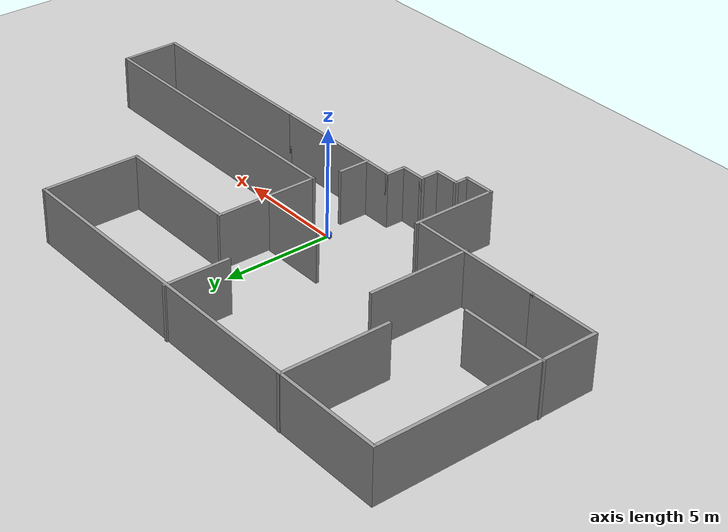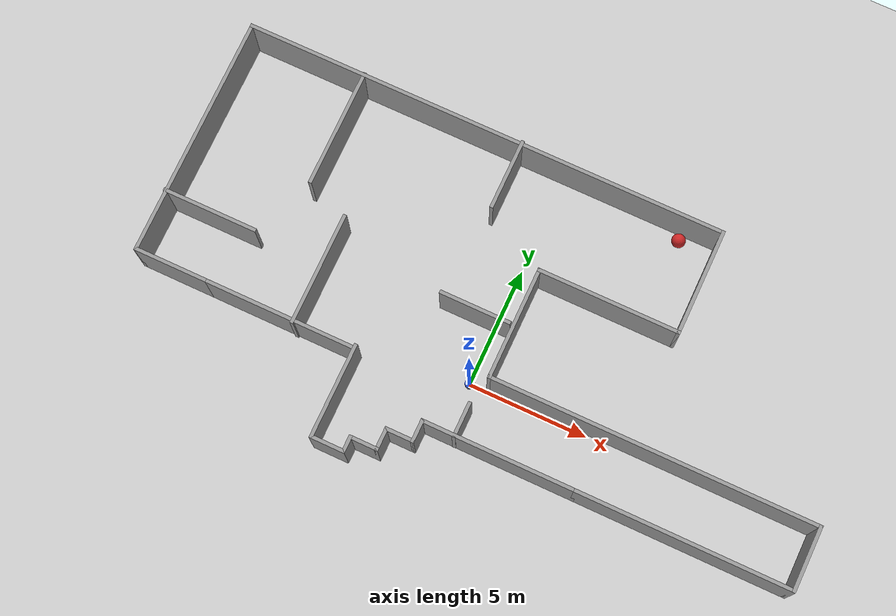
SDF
<sdf version="1.6">
 <world name="default">
  <light name="sun" type="directional">
   <pose>0 0 10 0 -0 0</pose>
   <diffuse>0.8 0.8 0.8 1</diffuse>
   <specular>0.2 0.2 0.2 1</specular>
   <attenuation>
    <range>1000</range>
    <constant>0.9</constant>
    <linear>0.01</linear>
    <quadratic>0.001</quadratic>
   </attenuation>
   <direction>-0.5 0.1 -0.9</direction>
  </light>
  <model name="ground_plane">
   <static>1</static>
   <link name="link">
    <collision name="collision">
     <geometry><plane><normal>0 0 1</normal><size>100 100</size></plane></geometry>
     <surface><friction><ode><mu>100</mu><mu2>50</mu2></ode></friction></surface>
    </collision>
    <visual name="visual">
     <cast_shadows>0</cast_shadows>
     <geometry><plane><normal>0 0 1</normal><size>100 100</size></plane></geometry>
     <material>
      <script><uri>file://media/materials/scripts/gazebo.material</uri><name>Gazebo/Grey</name></script>
     </material>
    </visual>
   </link>
  </model>
  <gravity>0 0 -9.8</gravity>
  <magnetic_field>6e-06 2.3e-05 -4.2e-05</magnetic_field>
  <atmosphere type="adiabatic"/>
  <physics name="default_physics" default="0" type="ode">
   <max_step_size>0.001</max_step_size>
   <real_time_factor>1</real_time_factor>
   <real_time_update_rate>1000</real_time_update_rate>
  </physics>
  <scene><ambient>0.4 0.4 0.4 1</ambient><background>0.7 0.7 0.7 1</background><shadows>1</shadows></scene>
  <audio><device>default</device></audio>
  <spherical_coordinates>
   <surface_model>EARTH_WGS84</surface_model>
   <latitude_deg>0</latitude_deg>
   <longitude_deg>0</longitude_deg>
   <elevation>0</elevation>
   <heading_deg>0</heading_deg>
  </spherical_coordinates>
  <model name="RoboCup SPL Ball">
   <static>0</static>
   <link name="ball">
    <inertial>
     <mass>0.0056</mass>
     <inertia>
      <ixx>2.37e-06</ixx>
      <iyy>2.37e-06</iyy>
      <izz>2.37e-06</izz>
      <ixy>0</ixy>
      <ixz>0</ixz>
      <iyz>0</iyz>
     </inertia>
    </inertial>
    <collision name="collision"><geometry><sphere><radius>0.289568</radius></sphere></geometry></collision>
    <visual name="visual">
     <geometry><sphere><radius>0.289568</radius></sphere></geometry>
     <material>
      <script><uri>file://media/materials/scripts/gazebo.material</uri><name>Gazebo/RedBright</name></script>
     </material>
    </visual>
   </link>
   <pose>5.15164 8.73556 0.289568 0.378232 -1e-06 0</pose>
  </model>
  <model name="mbot">
   <link name="base_footprint">
    <inertial>
     <pose>0.013077 0 0.138462 0 -0 0</pose>
     <mass>1.3</mass>
     <inertia>
      <ixx>0.0360561</ixx>
      <ixy>0</ixy>
      <ixz>-0.00121615</ixz>
      <iyy>0.0387238</iyy>
      <iyz>0</iyz>
      <izz>0.0426727</izz>
     </inertia>
    </inertial>
    <collision name="base_footprint_fixed_joint_lump__base_link_collision">
     <pose>0 0 0.11 0 -0 0</pose>
     <geometry><cylinder><length>0.16</length><radius>0.2</radius></cylinder></geometry>
    </collision>
    <collision name="base_footprint_fixed_joint_lump__camera_link_collision_1">
     <pose>0.17 0 0.21 0 -0 0</pose>
     <geometry><box><size>0.01 0.04 0.04</size></box></geometry>
    </collision>
    <collision name="base_footprint_fixed_joint_lump__pillar_link_collision_2">
     <pose>0 0 0.21 0 -0 0</pose>
     <geometry><cylinder><length>0.1</length><radius>0.01</radius></cylinder></geometry>
    </collision>
    <collision name="base_footprint_fixed_joint_lump__laser_link_collision_3">
     <pose>0 0 0.28 0 -0 0</pose>
     <geometry><cylinder><length>0.06</length><radius>0.05</radius></cylinder></geometry>
    </collision>
    <visual name="base_footprint_visual">
     <geometry><box><size>0.001 0.001 0.001</size></box></geometry>
     <material><script><uri>__default__</uri><name>__default__</name></script></material>
    </visual>
    <visual name="base_footprint_fixed_joint_lump__base_link_visual_1">
     <pose>0 0 0.11 0 -0 0</pose>
     <geometry><cylinder><length>0.16</length><radius>0.2</radius></cylinder></geometry>
     <material>
      <script><name>Gazebo/Blue</name><uri>file://media/materials/scripts/gazebo.material</uri></script>
     </material>
    </visual>
    <visual name="base_footprint_fixed_joint_lump__camera_link_visual_2">
     <pose>0.17 0 0.21 0 -0 0</pose>
     <geometry><box><size>0.01 0.04 0.04</size></box></geometry>
     <material>
      <script><name>Gazebo/Black</name><uri>file://media/materials/scripts/gazebo.material</uri></script>
     </material>
    </visual>
    <visual name="base_footprint_fixed_joint_lump__pillar_link_visual_3">
     <pose>0 0 0.21 0 -0 0</pose>
     <geometry><cylinder><length>0.1</length><radius>0.01</radius></cylinder></geometry>
    </visual>
    <visual name="base_footprint_fixed_joint_lump__laser_link_visual_4">
     <pose>0 0 0.28 0 -0 0</pose>
     <geometry><cylinder><length>0.05</length><radius>0.05</radius></cylinder></geometry>
     <material>
      <script><name>Gazebo/Black</name><uri>file://media/materials/scripts/gazebo.material</uri></script>
     </material>
    </visual>
    <sensor name="camera_node" type="camera">
     <update_rate>20</update_rate>
     <camera name="head">
      <horizontal_fov>1.39626</horizontal_fov>
      <image><width>1280</width><height>720</height><format>R8G8B8</format></image>
      <clip><near>0.02</near><far>300</far></clip>
      <noise><type>gaussian</type><mean>0</mean><stddev>0.007</stddev></noise>
     </camera>
     <plugin name="gazebo_camera" filename="libgazebo_ros_camera.so">
      <alwaysOn>1</alwaysOn>
      <updateRate>0.0</updateRate>
      <cameraName>/camera</cameraName>
      <imageTopicName>image_raw</imageTopicName>
      <cameraInfoTopicName>camera_info</cameraInfoTopicName>
      <frameName>camera_link</frameName>
      <hackBaseline>0.07</hackBaseline>
      <distortionK1>0.0</distortionK1>
      <distortionK2>0.0</distortionK2>
      <distortionK3>0.0</distortionK3>
      <distortionT1>0.0</distortionT1>
      <distortionT2>0.0</distortionT2>
      <robotNamespace>/</robotNamespace>
     </plugin>
     <pose>0.17 0 0.21 0 -0 0</pose>
    </sensor>
    <sensor name="rplidar" type="ray">
     <visualize>0</visualize>
     <update_rate>5.5</update_rate>
     <ray>
      <scan>
       <horizontal>
        <samples>360</samples>
        <resolution>1</resolution>
        <min_angle>-3</min_angle>
        <max_angle>3</max_angle>
       </horizontal>
       <vertical><samples>1</samples><min_angle>0</min_angle><max_angle>0</max_angle></vertical>
      </scan>
      <range><min>0.1</min><max>6</max><resolution>0.01</resolution></range>
      <noise><type>gaussian</type><mean>0</mean><stddev>0.01</stddev></noise>
     </ray>
     <plugin name="gazebo_rplidar" filename="libgazebo_ros_laser.so">
      <topicName>/scan</topicName>
      <frameName>laser_link</frameName>
      <robotNamespace>/</robotNamespace>
     </plugin>
     <pose>0 0 0.28 0 -0 0</pose>
    </sensor>
   </link>
   <link name="back_caster_link">
    <pose>0.18 0 0.015 0 -0 0</pose>
    <inertial>
     <mass>0.2</mass>
     <inertia><ixx>1.8e-05</ixx><ixy>0</ixy><ixz>0</ixz><iyy>1.8e-05</iyy><iyz>0</iyz><izz>1.8e-05</izz></inertia>
    </inertial>
    <collision name="back_caster_link_collision">
     <geometry><sphere><radius>0.015</radius></sphere></geometry>
    </collision>
    <visual name="back_caster_link_visual">
     <geometry><sphere><radius>0.015</radius></sphere></geometry>
     <material>
      <script><name>Gazebo/Black</name><uri>file://media/materials/scripts/gazebo.material</uri></script>
     </material>
    </visual>
   </link>
   <joint name="back_caster_joint" type="revolute">
    <child>back_caster_link</child>
    <parent>base_footprint</parent>
    <axis>
     <xyz>0 1 0</xyz>
     <limit><lower>-1e+16</lower><upper>1e+16</upper></limit>
     <dynamics><spring_reference>0</spring_reference><spring_stiffness>0</spring_stiffness></dynamics>
     <use_parent_model_frame>1</use_parent_model_frame>
    </axis>
   </joint>
   <link name="front_caster_link">
    <pose>-0.18 0 0.015 0 -0 0</pose>
    <inertial>
     <mass>0.2</mass>
     <inertia><ixx>1.8e-05</ixx><ixy>0</ixy><ixz>0</ixz><iyy>1.8e-05</iyy><iyz>0</iyz><izz>1.8e-05</izz></inertia>
    </inertial>
    <collision name="front_caster_link_collision">
     <geometry><sphere><radius>0.015</radius></sphere></geometry>
    </collision>
    <visual name="front_caster_link_visual">
     <geometry><sphere><radius>0.015</radius></sphere></geometry>
     <material>
      <script><name>Gazebo/Black</name><uri>file://media/materials/scripts/gazebo.material</uri></script>
     </material>
    </visual>
   </link>
   <joint name="front_caster_joint" type="revolute">
    <child>front_caster_link</child>
    <parent>base_footprint</parent>
    <axis>
     <xyz>0 1 0</xyz>
     <limit><lower>-1e+16</lower><upper>1e+16</upper></limit>
     <dynamics><spring_reference>0</spring_reference><spring_stiffness>0</spring_stiffness></dynamics>
     <use_parent_model_frame>1</use_parent_model_frame>
    </axis>
   </joint>
   <link name="left_wheel_link">
    <pose>0 0.19 0.06 0 -0 0</pose>
    <inertial>
     <mass>0.2</mass>
     <inertia>
      <ixx>0.000190417</ixx>
      <ixy>0</ixy>
      <ixz>0</ixz>
      <iyy>0.000190417</iyy>
      <iyz>0</iyz>
      <izz>0.00036</izz>
     </inertia>
    </inertial>
    <collision name="left_wheel_link_collision">
     <pose>0 0 0 1.5708 -0 0</pose>
     <geometry><cylinder><length>0.025</length><radius>0.06</radius></cylinder></geometry>
    </collision>
    <visual name="left_wheel_link_visual">
     <pose>0 0 0 1.5708 -0 0</pose>
     <geometry><cylinder><length>0.025</length><radius>0.06</radius></cylinder></geometry>
     <material>
      <script><name>Gazebo/Gray</name><uri>file://media/materials/scripts/gazebo.material</uri></script>
     </material>
    </visual>
   </link>
   <joint name="left_wheel_joint" type="revolute">
    <child>left_wheel_link</child>
    <parent>base_footprint</parent>
    <axis>
     <xyz>0 1 0</xyz>
     <limit><lower>-1e+16</lower><upper>1e+16</upper></limit>
     <dynamics><spring_reference>0</spring_reference><spring_stiffness>0</spring_stiffness></dynamics>
     <use_parent_model_frame>1</use_parent_model_frame>
    </axis>
   </joint>
   <link name="right_wheel_link">
    <pose>0 -0.19 0.06 0 -0 0</pose>
    <inertial>
     <mass>0.2</mass>
     <inertia>
      <ixx>0.000190417</ixx>
      <ixy>0</ixy>
      <ixz>0</ixz>
      <iyy>0.000190417</iyy>
      <iyz>0</iyz>
      <izz>0.00036</izz>
     </inertia>
    </inertial>
    <collision name="right_wheel_link_collision">
     <pose>0 0 0 1.5708 -0 0</pose>
     <geometry><cylinder><length>0.025</length><radius>0.06</radius></cylinder></geometry>
    </collision>
    <visual name="right_wheel_link_visual">
     <pose>0 0 0 1.5708 -0 0</pose>
     <geometry><cylinder><length>0.025</length><radius>0.06</radius></cylinder></geometry>
     <material>
      <script><name>Gazebo/Gray</name><uri>file://media/materials/scripts/gazebo.material</uri></script>
     </material>
    </visual>
   </link>
   <joint name="right_wheel_joint" type="revolute">
    <child>right_wheel_link</child>
    <parent>base_footprint</parent>
    <axis>
     <xyz>0 1 0</xyz>
     <limit><lower>-1e+16</lower><upper>1e+16</upper></limit>
     <dynamics><spring_reference>0</spring_reference><spring_stiffness>0</spring_stiffness></dynamics>
     <use_parent_model_frame>1</use_parent_model_frame>
    </axis>
   </joint>
   <static>0</static>
   <plugin name="differential_drive_controller" filename="libgazebo_ros_diff_drive.so">
    <rosDebugLevel>Debug</rosDebugLevel>
    <publishWheelTF>1</publishWheelTF>
    <robotNamespace>/</robotNamespace>
    <publishTf>1</publishTf>
    <publishWheelJointState>1</publishWheelJointState>
    <alwaysOn>1</alwaysOn>
    <updateRate>100.0</updateRate>
    <legacyMode>1</legacyMode>
    <leftJoint>left_wheel_joint</leftJoint>
    <rightJoint>right_wheel_joint</rightJoint>
    <wheelSeparation>0.38</wheelSeparation>
    <wheelDiameter>0.12</wheelDiameter>
    <broadcastTF>1</broadcastTF>
    <wheelTorque>30</wheelTorque>
    <wheelAcceleration>1.8</wheelAcceleration>
    <commandTopic>cmd_vel</commandTopic>
    <odometryFrame>odom</odometryFrame>
    <odometryTopic>odom</odometryTopic>
    <robotBaseFrame>base_footprint</robotBaseFrame>
   </plugin>
   <pose>0.007473 0.008145 0 1.5e-05 -0 0.003546</pose>
  </model>
  <model name="Untitled">
   <pose>0.287775 2.221 0 0 -0 0</pose>
   <link name="Wall_0">
    <collision name="Wall_0_Collision">
     <geometry><box><size>4 0.15 2.5</size></box></geometry>
     <pose>0 0 1.25 0 -0 0</pose>
    </collision>
    <visual name="Wall_0_Visual">
     <pose>0 0 1.25 0 -0 0</pose>
     <geometry><box><size>4 0.15 2.5</size></box></geometry>
     <material>
      <script><uri>file://media/materials/scripts/gazebo.material</uri><name>Gazebo/Grey</name></script>
      <ambient>1 1 1 1</ambient>
     </material>
     <meta><layer>0</layer></meta>
    </visual>
    <pose>-4.67777 -5.036 0 0 -0 -1.5708</pose>
   </link>
   <link name="Wall_1">
    <collision name="Wall_1_Collision">
     <geometry><box><size>1.5 0.15 2.5</size></box></geometry>
     <pose>0 0 1.25 0 -0 0</pose>
    </collision>
    <visual name="Wall_1_Visual">
     <pose>0 0 1.25 0 -0 0</pose>
     <geometry><box><size>1.5 0.15 2.5</size></box></geometry>
     <material>
      <script><uri>file://media/materials/scripts/gazebo.material</uri><name>Gazebo/Grey</name></script>
      <ambient>1 1 1 1</ambient>
     </material>
     <meta><layer>0</layer></meta>
    </visual>
    <pose>-4.00277 -6.961 0 0 -0 0</pose>
   </link>
   <link name="Wall_10">
    <collision name="Wall_10_Collision">
     <geometry><box><size>13.75 0.15 2.5</size></box></geometry>
     <pose>0 0 1.25 0 -0 0</pose>
    </collision>
    <visual name="Wall_10_Visual">
     <pose>0 0 1.25 0 -0 0</pose>
     <geometry><box><size>13.75 0.15 2.5</size></box></geometry>
     <material>
      <script><uri>file://media/materials/scripts/gazebo.material</uri><name>Gazebo/Grey</name></script>
      <ambient>1 1 1 1</ambient>
     </material>
     <meta><layer>0</layer></meta>
    </visual>
    <pose>7.27222 -2.061 0 0 -0 3.14159</pose>
   </link>
   <link name="Wall_11">
    <collision name="Wall_11_Collision">
     <geometry><box><size>4.75 0.15 2.5</size></box></geometry>
     <pose>0 0 1.25 0 -0 0</pose>
    </collision>
    <visual name="Wall_11_Visual">
     <pose>0 0 1.25 0 -0 0</pose>
     <geometry><box><size>4.75 0.15 2.5</size></box></geometry>
     <material>
      <script><uri>file://media/materials/scripts/gazebo.material</uri><name>Gazebo/Grey</name></script>
      <ambient>1 1 1 1</ambient>
     </material>
     <meta><layer>0</layer></meta>
    </visual>
    <pose>0.472225 0.239004 0 0 -0 1.5708</pose>
   </link>
   <link name="Wall_12">
    <collision name="Wall_12_Collision">
     <geometry><box><size>6 0.15 2.5</size></box></geometry>
     <pose>0 0 1.25 0 -0 0</pose>
    </collision>
    <visual name="Wall_12_Visual">
     <pose>0 0 1.25 0 -0 0</pose>
     <geometry><box><size>6 0.15 2.5</size></box></geometry>
     <material>
      <script><uri>file://media/materials/scripts/gazebo.material</uri><name>Gazebo/Grey</name></script>
      <ambient>1 1 1 1</ambient>
     </material>
     <meta><layer>0</layer></meta>
    </visual>
    <pose>3.39723 2.539 0 0 -0 0</pose>
   </link>
   <link name="Wall_13">
    <collision name="Wall_13_Collision">
     <geometry><box><size>4.5 0.15 2.5</size></box></geometry>
     <pose>0 0 1.25 0 -0 0</pose>
    </collision>
    <visual name="Wall_13_Visual">
     <pose>0 0 1.25 0 -0 0</pose>
     <geometry><box><size>4.5 0.15 2.5</size></box></geometry>
     <material>
      <script><uri>file://media/materials/scripts/gazebo.material</uri><name>Gazebo/Grey</name></script>
      <ambient>1 1 1 1</ambient>
     </material>
     <meta><layer>0</layer></meta>
    </visual>
    <pose>6.32223 4.714 0 0 -0 1.5708</pose>
   </link>
   <link name="Wall_14">
    <collision name="Wall_14_Collision">
     <geometry><box><size>20.5 0.15 2.5</size></box></geometry>
     <pose>0 0 1.25 0 -0 0</pose>
    </collision>
    <visual name="Wall_14_Visual">
     <pose>0 0 1.25 0 -0 0</pose>
     <geometry><box><size>20.5 0.15 2.5</size></box></geometry>
     <material>
      <script><uri>file://media/materials/scripts/gazebo.material</uri><name>Gazebo/Grey</name></script>
      <ambient>1 1 1 1</ambient>
     </material>
     <meta><layer>0</layer></meta>
    </visual>
    <pose>-3.85277 6.889 0 0 -0 3.14159</pose>
   </link>
   <link name="Wall_15">
    <collision name="Wall_15_Collision">
     <geometry><box><size>10.25 0.15 2.5</size></box></geometry>
     <pose>0 0 1.25 0 -0 0</pose>
    </collision>
    <visual name="Wall_15_Visual">
     <pose>0 0 1.25 0 -0 0</pose>
     <geometry><box><size>10.25 0.15 2.5</size></box></geometry>
     <material>
      <script><uri>file://media/materials/scripts/gazebo.material</uri><name>Gazebo/Grey</name></script>
      <ambient>1 1 1 1</ambient>
     </material>
     <meta><layer>0</layer></meta>
    </visual>
    <pose>-14.0278 1.839 0 0 -0 -1.5708</pose>
   </link>
   <link name="Wall_16">
    <collision name="Wall_16_Collision">
     <geometry><box><size>3.25 0.15 2.5</size></box></geometry>
     <pose>0 0 1.25 0 -0 0</pose>
    </collision>
    <visual name="Wall_16_Visual">
     <pose>0 0 1.25 0 -0 0</pose>
     <geometry><box><size>3.25 0.15 2.5</size></box></geometry>
     <material>
      <script><uri>file://media/materials/scripts/gazebo.material</uri><name>Gazebo/Grey</name></script>
      <ambient>1 1 1 1</ambient>
     </material>
     <meta><layer>0</layer></meta>
    </visual>
    <pose>-12.4778 -3.211 0 0 -0 0</pose>
   </link>
   <link name="Wall_17">
    <collision name="Wall_17_Collision">
     <geometry><box><size>6.25 0.15 2.5</size></box></geometry>
     <pose>0 0 1.25 0 -0 0</pose>
    </collision>
    <visual name="Wall_17_Visual">
     <pose>0 0 1.25 0 -0 0</pose>
     <geometry><box><size>6.25 0.15 2.5</size></box></geometry>
     <material>
      <script><uri>file://media/materials/scripts/gazebo.material</uri><name>Gazebo/Grey</name></script>
      <ambient>1 1 1 1</ambient>
     </material>
     <meta><layer>0</layer></meta>
    </visual>
    <pose>-7.87777 -3.211 0 0 -0 0</pose>
   </link>
   <link name="Wall_19">
    <collision name="Wall_19_Collision">
     <geometry><box><size>1.5 0.15 2.5</size></box></geometry>
     <pose>0 0 1.25 0 -0 0</pose>
    </collision>
    <visual name="Wall_19_Visual">
     <pose>0 0 1.25 0 -0 0</pose>
     <geometry><box><size>1.5 0.15 2.5</size></box></geometry>
     <material>
      <script><uri>file://media/materials/scripts/gazebo.material</uri><name>Gazebo/Grey</name></script>
      <ambient>1 1 1 1</ambient>
     </material>
     <meta><layer>0</layer></meta>
    </visual>
    <pose>0.210615 -3.99498 0 0 -0 1.5708</pose>
   </link>
   <link name="Wall_2">
    <collision name="Wall_2_Collision">
     <geometry><box><size>0.75 0.15 2.5</size></box></geometry>
     <pose>0 0 1.25 0 -0 0</pose>
    </collision>
    <visual name="Wall_2_Visual">
     <pose>0 0 1.25 0 -0 0</pose>
     <geometry><box><size>0.75 0.15 2.5</size></box></geometry>
     <material>
      <script><uri>file://media/materials/scripts/gazebo.material</uri><name>Gazebo/Grey</name></script>
      <ambient>1 1 1 1</ambient>
     </material>
     <meta><layer>0</layer></meta>
    </visual>
    <pose>-3.32777 -6.661 0 0 -0 1.5708</pose>
   </link>
   <link name="Wall_21">
    <collision name="Wall_21_Collision">
     <geometry><box><size>4.75 0.15 2.5</size></box></geometry>
     <pose>0 0 1.25 0 -0 0</pose>
    </collision>
    <visual name="Wall_21_Visual">
     <pose>0 0 1.25 0 -0 0</pose>
     <geometry><box><size>4.75 0.15 2.5</size></box></geometry>
     <material>
      <script><uri>file://media/materials/scripts/gazebo.material</uri><name>Gazebo/Grey</name></script>
      <ambient>1 1 1 1</ambient>
     </material>
     <meta><layer>0</layer></meta>
    </visual>
    <pose>-7.27973 -0.974264 0 0 -0 1.5708</pose>
   </link>
   <link name="Wall_23">
    <collision name="Wall_23_Collision">
     <geometry><box><size>4 0.15 2.5</size></box></geometry>
     <pose>0 0 1.25 0 -0 0</pose>
    </collision>
    <visual name="Wall_23_Visual">
     <pose>0 0 1.25 0 -0 0</pose>
     <geometry><box><size>4 0.15 2.5</size></box></geometry>
     <material>
      <script><uri>file://media/materials/scripts/gazebo.material</uri><name>Gazebo/Grey</name></script>
      <ambient>1 1 1 1</ambient>
     </material>
     <meta><layer>0</layer></meta>
    </visual>
    <pose>-12.1472 -0.622401 0 0 -0 0</pose>
   </link>
   <link name="Wall_25">
    <collision name="Wall_25_Collision">
     <geometry><box><size>5 0.15 2.5</size></box></geometry>
     <pose>0 0 1.25 0 -0 0</pose>
    </collision>
    <visual name="Wall_25_Visual">
     <pose>0 0 1.25 0 -0 0</pose>
     <geometry><box><size>5 0.15 2.5</size></box></geometry>
     <material>
      <script><uri>file://media/materials/scripts/gazebo.material</uri><name>Gazebo/Grey</name></script>
      <ambient>1 1 1 1</ambient>
     </material>
     <meta><layer>0</layer></meta>
    </visual>
    <pose>-9.09417 4.48947 0 0 -0 -1.5708</pose>
   </link>
   <link name="Wall_27">
    <collision name="Wall_27_Collision">
     <geometry><box><size>3 0.15 2.5</size></box></geometry>
     <pose>0 0 1.25 0 -0 0</pose>
    </collision>
    <visual name="Wall_27_Visual">
     <pose>0 0 1.25 0 -0 0</pose>
     <geometry><box><size>3 0.15 2.5</size></box></geometry>
     <material>
      <script><uri>file://media/materials/scripts/gazebo.material</uri><name>Gazebo/Grey</name></script>
      <ambient>1 1 1 1</ambient>
     </material>
     <meta><layer>0</layer></meta>
    </visual>
    <pose>-2.25515 5.536 0 0 -0 -1.5708</pose>
   </link>
   <link name="Wall_29">
    <collision name="Wall_29_Collision">
     <geometry><box><size>3 0.15 2.5</size></box></geometry>
     <pose>0 0 1.25 0 -0 0</pose>
    </collision>
    <visual name="Wall_29_Visual">
     <pose>0 0 1.25 0 -0 0</pose>
     <geometry><box><size>3 0.15 2.5</size></box></geometry>
     <material>
      <script><uri>file://media/materials/scripts/gazebo.material</uri><name>Gazebo/Grey</name></script>
      <ambient>1 1 1 1</ambient>
     </material>
     <meta><layer>0</layer></meta>
    </visual>
    <pose>-1.15582 0.168506 0 0 -0 0</pose>
   </link>
   <link name="Wall_3">
    <collision name="Wall_3_Collision">
     <geometry><box><size>1.25 0.15 2.5</size></box></geometry>
     <pose>0 0 1.25 0 -0 0</pose>
    </collision>
    <visual name="Wall_3_Visual">
     <pose>0 0 1.25 0 -0 0</pose>
     <geometry><box><size>1.25 0.15 2.5</size></box></geometry>
     <material>
      <script><uri>file://media/materials/scripts/gazebo.material</uri><name>Gazebo/Grey</name></script>
      <ambient>1 1 1 1</ambient>
     </material>
     <meta><layer>0</layer></meta>
    </visual>
    <pose>-2.77778 -6.361 0 0 -0 0</pose>
   </link>
   <link name="Wall_4">
    <collision name="Wall_4_Collision">
     <geometry><box><size>1 0.15 2.5</size></box></geometry>
     <pose>0 0 1.25 0 -0 0</pose>
    </collision>
    <visual name="Wall_4_Visual">
     <pose>0 0 1.25 0 -0 0</pose>
     <geometry><box><size>1 0.15 2.5</size></box></geometry>
     <material>
      <script><uri>file://media/materials/scripts/gazebo.material</uri><name>Gazebo/Grey</name></script>
      <ambient>1 1 1 1</ambient>
     </material>
     <meta><layer>0</layer></meta>
    </visual>
    <pose>-2.22777 -5.936 0 0 -0 1.5708</pose>
   </link>
   <link name="Wall_5">
    <collision name="Wall_5_Collision">
     <geometry><box><size>1.25 0.15 2.5</size></box></geometry>
     <pose>0 0 1.25 0 -0 0</pose>
    </collision>
    <visual name="Wall_5_Visual">
     <pose>0 0 1.25 0 -0 0</pose>
     <geometry><box><size>1.25 0.15 2.5</size></box></geometry>
     <material>
      <script><uri>file://media/materials/scripts/gazebo.material</uri><name>Gazebo/Grey</name></script>
      <ambient>1 1 1 1</ambient>
     </material>
     <meta><layer>0</layer></meta>
    </visual>
    <pose>-1.67778 -5.511 0 0 -0 0</pose>
   </link>
   <link name="Wall_6">
    <collision name="Wall_6_Collision">
     <geometry><box><size>1 0.15 2.5</size></box></geometry>
     <pose>0 0 1.25 0 -0 0</pose>
    </collision>
    <visual name="Wall_6_Visual">
     <pose>0 0 1.25 0 -0 0</pose>
     <geometry><box><size>1 0.15 2.5</size></box></geometry>
     <material>
      <script><uri>file://media/materials/scripts/gazebo.material</uri><name>Gazebo/Grey</name></script>
      <ambient>1 1 1 1</ambient>
     </material>
     <meta><layer>0</layer></meta>
    </visual>
    <pose>-1.12777 -5.086 0 0 -0 1.5708</pose>
   </link>
   <link name="Wall_7">
    <collision name="Wall_7_Collision">
     <geometry><box><size>6.5 0.15 2.5</size></box></geometry>
     <pose>0 0 1.25 0 -0 0</pose>
    </collision>
    <visual name="Wall_7_Visual">
     <pose>0 0 1.25 0 -0 0</pose>
     <geometry><box><size>6.5 0.15 2.5</size></box></geometry>
     <material>
      <script><uri>file://media/materials/scripts/gazebo.material</uri><name>Gazebo/Grey</name></script>
      <ambient>1 1 1 1</ambient>
     </material>
     <meta><layer>0</layer></meta>
    </visual>
    <pose>2.04723 -4.661 0 0 -0 0</pose>
   </link>
   <link name="Wall_8">
    <collision name="Wall_8_Collision">
     <geometry><box><size>9 0.15 2.5</size></box></geometry>
     <pose>0 0 1.25 0 -0 0</pose>
    </collision>
    <visual name="Wall_8_Visual">
     <pose>0 0 1.25 0 -0 0</pose>
     <geometry><box><size>9 0.15 2.5</size></box></geometry>
     <material>
      <script><uri>file://media/materials/scripts/gazebo.material</uri><name>Gazebo/Grey</name></script>
      <ambient>1 1 1 1</ambient>
     </material>
     <meta><layer>0</layer></meta>
    </visual>
    <pose>9.64723 -4.661 0 0 -0 0</pose>
   </link>
   <link name="Wall_9">
    <collision name="Wall_9_Collision">
     <geometry><box><size>2.75 0.15 2.5</size></box></geometry>
     <pose>0 0 1.25 0 -0 0</pose>
    </collision>
    <visual name="Wall_9_Visual">
     <pose>0 0 1.25 0 -0 0</pose>
     <geometry><box><size>2.75 0.15 2.5</size></box></geometry>
     <material>
      <script><uri>file://media/materials/scripts/gazebo.material</uri><name>Gazebo/Grey</name></script>
      <ambient>1 1 1 1</ambient>
     </material>
     <meta><layer>0</layer></meta>
    </visual>
    <pose>14.0722 -3.361 0 0 -0 1.5708</pose>
   </link>
   <static>1</static>
  </model>
 </world>
</sdf>
